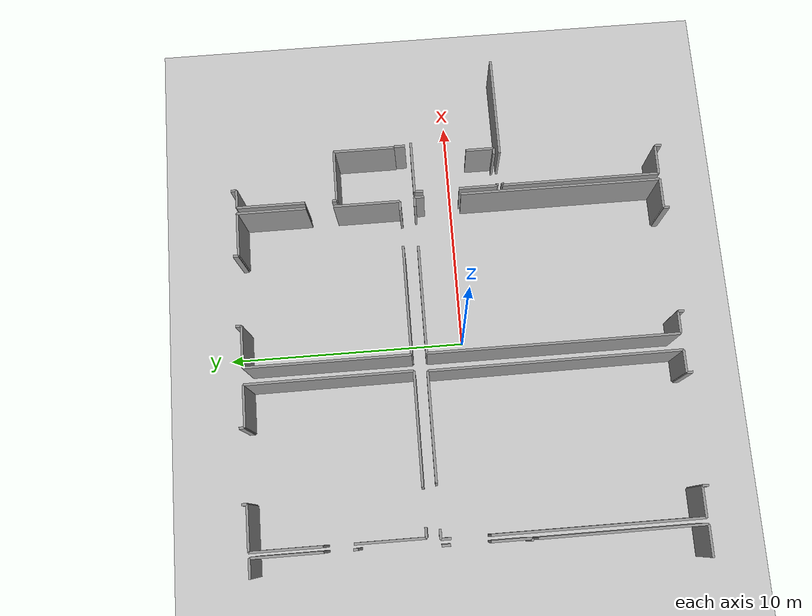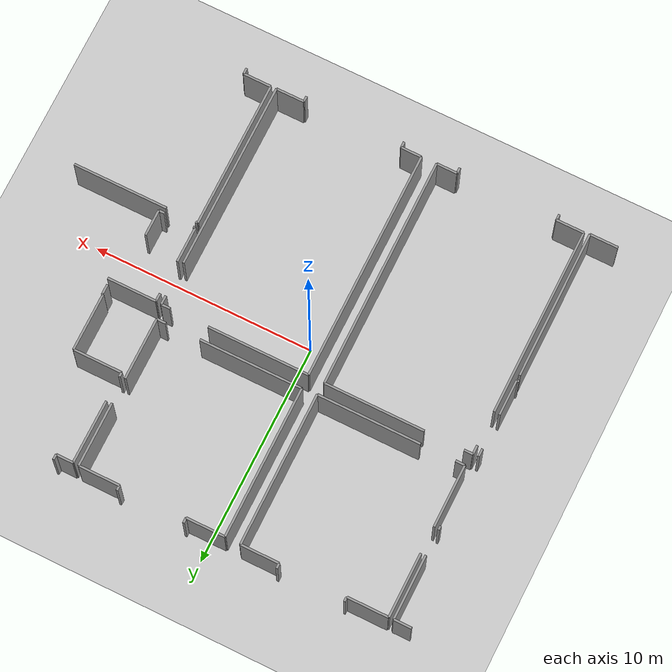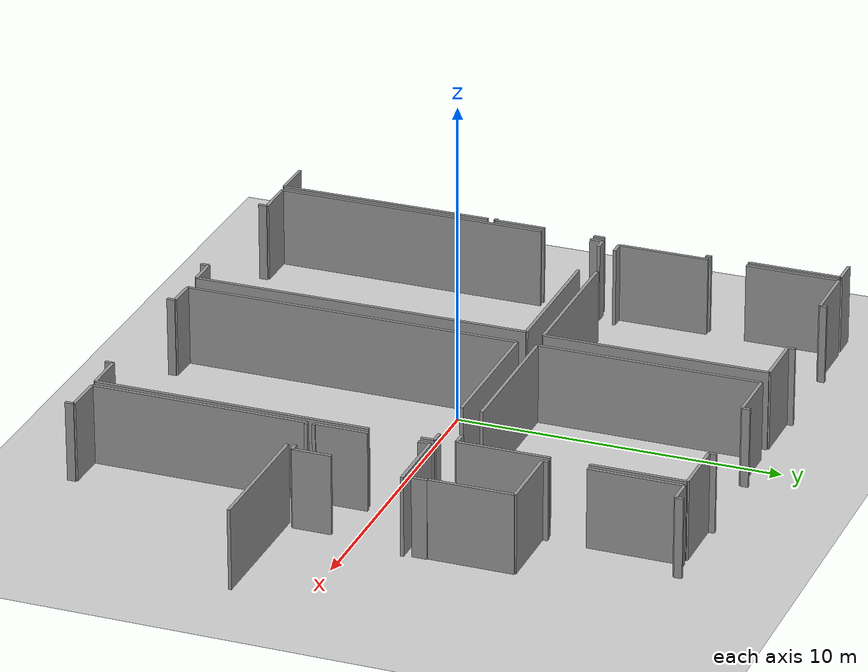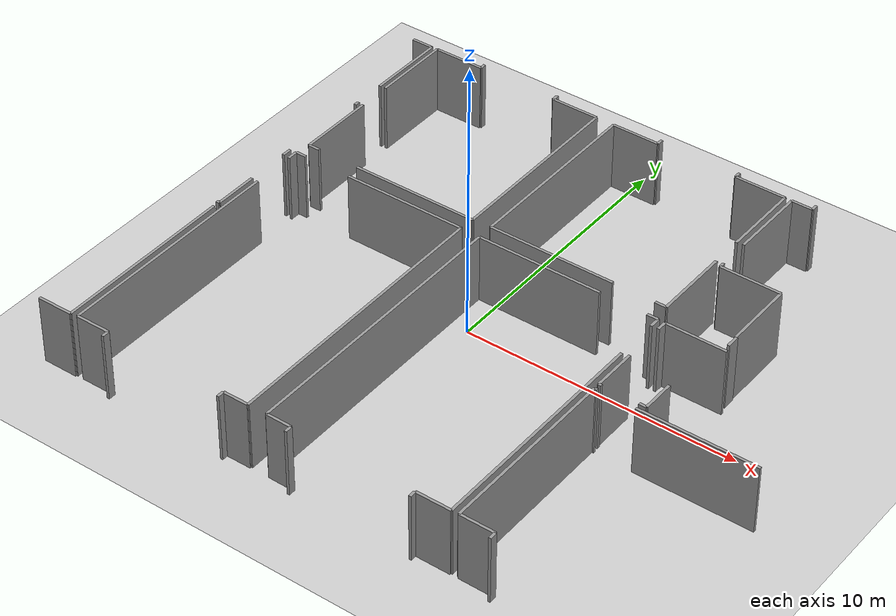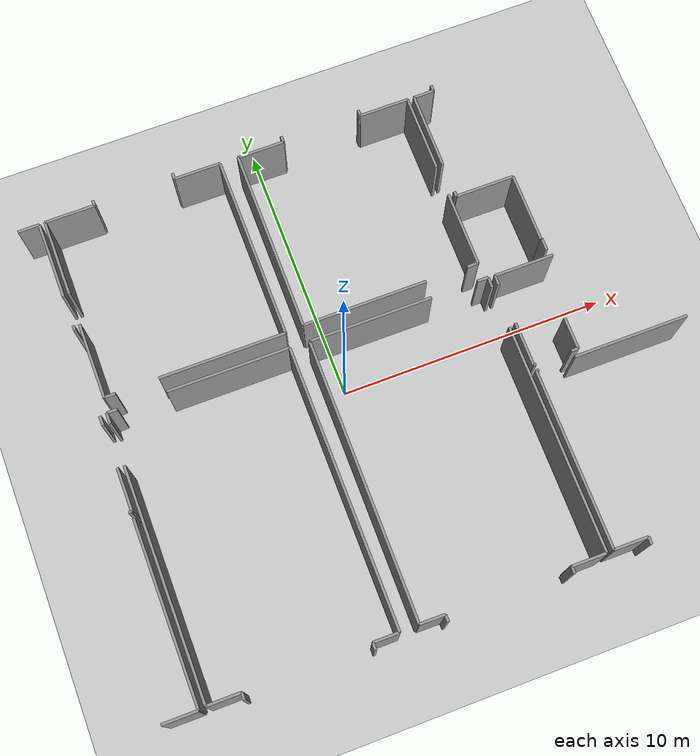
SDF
<sdf version="1.6">
 <world name="default">
  <model name="ground_plane">
   <static>1</static>
   <link name="link">
    <collision name="collision">
     <geometry><plane><normal>0 0 1</normal><size>100 100</size></plane></geometry>
     <surface><friction><ode><mu>100</mu><mu2>50</mu2></ode></friction></surface>
    </collision>
    <visual name="visual">
     <cast_shadows>0</cast_shadows>
     <geometry><plane><normal>0 0 1</normal><size>100 100</size></plane></geometry>
     <material>
      <script><uri>file://media/materials/scripts/gazebo.material</uri><name>Gazebo/Grey</name></script>
     </material>
    </visual>
   </link>
  </model>
  <model name="0510034841_A-40">
   <static>1</static>
   <link name="Wall_93">
    <collision name="Wall_93_Collision">
     <geometry><box><size>0.183558444196 0.1 2.5</size></box></geometry>
     <pose>0.0917792220981 0 1.25 0 0 0</pose>
    </collision>
    <visual name="Wall_93_Visual">
     <pose>0.0917792220981 0 1.25 0 0 0</pose>
     <geometry><box><size>0.183558444196 0.1 2.5</size></box></geometry>
     <material>
      <script><uri>file://media/materials/scripts/gazebo.material</uri><name>Gazebo/Grey</name></script>
      <ambient>1 1 1 1</ambient>
     </material>
    </visual>
    <pose>25.5278257337 -4.49007311872 0 0 0 1.57079632679</pose>
   </link>
   <link name="Wall_94">
    <collision name="Wall_94_Collision">
     <geometry><box><size>2.91053112623 0.1 2.5</size></box></geometry>
     <pose>1.45526556312 0 1.25 0 0 0</pose>
    </collision>
    <visual name="Wall_94_Visual">
     <pose>1.45526556312 0 1.25 0 0 0</pose>
     <geometry><box><size>2.91053112623 0.1 2.5</size></box></geometry>
     <material>
      <script><uri>file://media/materials/scripts/gazebo.material</uri><name>Gazebo/Grey</name></script>
      <ambient>1 1 1 1</ambient>
     </material>
    </visual>
    <pose>25.5278257337 -3.14626282116 0 0 0 1.57079632679</pose>
   </link>
   <link name="Wall_95">
    <collision name="Wall_95_Collision">
     <geometry><box><size>0.794658271555 0.1 2.5</size></box></geometry>
     <pose>0.397329135777 0 1.25 0 0 0</pose>
    </collision>
    <visual name="Wall_95_Visual">
     <pose>0.397329135777 0 1.25 0 0 0</pose>
     <geometry><box><size>0.794658271555 0.1 2.5</size></box></geometry>
     <material>
      <script><uri>file://media/materials/scripts/gazebo.material</uri><name>Gazebo/Grey</name></script>
      <ambient>1 1 1 1</ambient>
     </material>
    </visual>
    <pose>25.5278257337 -0.235731694932 0 0 0 3.14159265359</pose>
   </link>
   <link name="Wall_104">
    <collision name="Wall_104_Collision">
     <geometry><box><size>4.66512643445 0.1 2.5</size></box></geometry>
     <pose>2.33256321722 0 1.25 0 0 0</pose>
    </collision>
    <visual name="Wall_104_Visual">
     <pose>2.33256321722 0 1.25 0 0 0</pose>
     <geometry><box><size>4.66512643445 0.1 2.5</size></box></geometry>
     <material>
      <script><uri>file://media/materials/scripts/gazebo.material</uri><name>Gazebo/Grey</name></script>
      <ambient>1 1 1 1</ambient>
     </material>
    </visual>
    <pose>32.396542094 -7.18683355337 0 0 0 3.14159265359</pose>
   </link>
   <link name="Wall_105">
    <collision name="Wall_105_Collision">
     <geometry><box><size>0.41738600589 0.1 2.5</size></box></geometry>
     <pose>0.208693002945 0 1.25 0 0 0</pose>
    </collision>
    <visual name="Wall_105_Visual">
     <pose>0.208693002945 0 1.25 0 0 0</pose>
     <geometry><box><size>0.41738600589 0.1 2.5</size></box></geometry>
     <material>
      <script><uri>file://media/materials/scripts/gazebo.material</uri><name>Gazebo/Grey</name></script>
      <ambient>1 1 1 1</ambient>
     </material>
    </visual>
    <pose>26.1622829288 -7.18683355337 0 0 0 3.14159265359</pose>
   </link>
   <link name="Wall_106">
    <collision name="Wall_106_Collision">
     <geometry><box><size>2.84693307606 0.1 2.5</size></box></geometry>
     <pose>1.42346653803 0 1.25 0 0 0</pose>
    </collision>
    <visual name="Wall_106_Visual">
     <pose>1.42346653803 0 1.25 0 0 0</pose>
     <geometry><box><size>2.84693307606 0.1 2.5</size></box></geometry>
     <material>
      <script><uri>file://media/materials/scripts/gazebo.material</uri><name>Gazebo/Grey</name></script>
      <ambient>1 1 1 1</ambient>
     </material>
    </visual>
    <pose>25.7448969229 -7.18683355337 0 0 0 1.57079632679</pose>
   </link>
   <link name="Wall_107">
    <collision name="Wall_107_Collision">
     <geometry><box><size>2.91408550828 0.1 2.5</size></box></geometry>
     <pose>1.45704275414 0 1.25 0 0 0</pose>
    </collision>
    <visual name="Wall_107_Visual">
     <pose>1.45704275414 0 1.25 0 0 0</pose>
     <geometry><box><size>2.91408550828 0.1 2.5</size></box></geometry>
     <material>
      <script><uri>file://media/materials/scripts/gazebo.material</uri><name>Gazebo/Grey</name></script>
      <ambient>1 1 1 1</ambient>
     </material>
    </visual>
    <pose>25.7448969229 -3.13433025287 0 0 0 1.57079632679</pose>
   </link>
   <link name="Wall_108">
    <collision name="Wall_108_Collision">
     <geometry><box><size>1.86135371179 0.1 2.5</size></box></geometry>
     <pose>0.930676855895 0 1.25 0 0 0</pose>
    </collision>
    <visual name="Wall_108_Visual">
     <pose>0.930676855895 0 1.25 0 0 0</pose>
     <geometry><box><size>1.86135371179 0.1 2.5</size></box></geometry>
     <material>
      <script><uri>file://media/materials/scripts/gazebo.material</uri><name>Gazebo/Grey</name></script>
      <ambient>1 1 1 1</ambient>
     </material>
    </visual>
    <pose>25.7448969229 -0.220244744592 0 0 0 0.0</pose>
   </link>
   <link name="Wall_109">
    <collision name="Wall_109_Collision">
     <geometry><box><size>0.21008936732 0.1 2.5</size></box></geometry>
     <pose>0.10504468366 0 1.25 0 0 0</pose>
    </collision>
    <visual name="Wall_109_Visual">
     <pose>0.10504468366 0 1.25 0 0 0</pose>
     <geometry><box><size>0.21008936732 0.1 2.5</size></box></geometry>
     <material>
      <script><uri>file://media/materials/scripts/gazebo.material</uri><name>Gazebo/Grey</name></script>
      <ambient>1 1 1 1</ambient>
     </material>
    </visual>
    <pose>27.6062506347 -0.220244744592 0 0 0 1.57079632679</pose>
   </link>
   <link name="Wall_110">
    <collision name="Wall_110_Collision">
     <geometry><box><size>0.232177312887 0.1 2.5</size></box></geometry>
     <pose>0.116088656444 0 1.25 0 0 0</pose>
    </collision>
    <visual name="Wall_110_Visual">
     <pose>0.116088656444 0 1.25 0 0 0</pose>
     <geometry><box><size>0.232177312887 0.1 2.5</size></box></geometry>
     <material>
      <script><uri>file://media/materials/scripts/gazebo.material</uri><name>Gazebo/Grey</name></script>
      <ambient>1 1 1 1</ambient>
     </material>
    </visual>
    <pose>30.6328069463 -0.0101553772723 0 0 0 -1.57079632679</pose>
   </link>
   <link name="Wall_111">
    <collision name="Wall_111_Collision">
     <geometry><box><size>1.74190108663 0.1 2.5</size></box></geometry>
     <pose>0.870950543313 0 1.25 0 0 0</pose>
    </collision>
    <visual name="Wall_111_Visual">
     <pose>0.870950543313 0 1.25 0 0 0</pose>
     <geometry><box><size>1.74190108663 0.1 2.5</size></box></geometry>
     <material>
      <script><uri>file://media/materials/scripts/gazebo.material</uri><name>Gazebo/Grey</name></script>
      <ambient>1 1 1 1</ambient>
     </material>
    </visual>
    <pose>30.6328069463 -0.242332690159 0 0 0 0.0</pose>
   </link>
   <link name="Wall_112">
    <collision name="Wall_112_Collision">
     <geometry><box><size>6.94453518713 0.1 2.5</size></box></geometry>
     <pose>3.47226759357 0 1.25 0 0 0</pose>
    </collision>
    <visual name="Wall_112_Visual">
     <pose>3.47226759357 0 1.25 0 0 0</pose>
     <geometry><box><size>6.94453518713 0.1 2.5</size></box></geometry>
     <material>
      <script><uri>file://media/materials/scripts/gazebo.material</uri><name>Gazebo/Grey</name></script>
      <ambient>1 1 1 1</ambient>
     </material>
    </visual>
    <pose>32.3747080329 -0.242332690159 0 0 0 -1.56765225789</pose>
   </link>
   <link name="Wall_113">
    <collision name="Wall_113_Collision">
     <geometry><box><size>0.940641819844 0.1 2.5</size></box></geometry>
     <pose>0.470320909922 0 1.25 0 0 0</pose>
    </collision>
    <visual name="Wall_113_Visual">
     <pose>0.470320909922 0 1.25 0 0 0</pose>
     <geometry><box><size>0.940641819844 0.1 2.5</size></box></geometry>
     <material>
      <script><uri>file://media/materials/scripts/gazebo.material</uri><name>Gazebo/Grey</name></script>
      <ambient>1 1 1 1</ambient>
     </material>
    </visual>
    <pose>32.3904488677 -18.2412155987 0 0 0 3.14159265359</pose>
   </link>
   <link name="Wall_114">
    <collision name="Wall_114_Collision">
     <geometry><box><size>0.259216004875 0.1 2.5</size></box></geometry>
     <pose>0.129608002437 0 1.25 0 0 0</pose>
    </collision>
    <visual name="Wall_114_Visual">
     <pose>0.129608002437 0 1.25 0 0 0</pose>
     <geometry><box><size>0.259216004875 0.1 2.5</size></box></geometry>
     <material>
      <script><uri>file://media/materials/scripts/gazebo.material</uri><name>Gazebo/Grey</name></script>
      <ambient>1 1 1 1</ambient>
     </material>
    </visual>
    <pose>31.4498070478 -18.2412155987 0 0 0 -1.57079632679</pose>
   </link>
   <link name="Wall_115">
    <collision name="Wall_115_Collision">
     <geometry><box><size>0.265436173454 0.1 2.5</size></box></geometry>
     <pose>0.132718086727 0 1.25 0 0 0</pose>
    </collision>
    <visual name="Wall_115_Visual">
     <pose>0.132718086727 0 1.25 0 0 0</pose>
     <geometry><box><size>0.265436173454 0.1 2.5</size></box></geometry>
     <material>
      <script><uri>file://media/materials/scripts/gazebo.material</uri><name>Gazebo/Grey</name></script>
      <ambient>1 1 1 1</ambient>
     </material>
    </visual>
    <pose>26.8957550523 -18.5004316035 0 0 0 1.57079632679</pose>
   </link>
   <link name="Wall_116">
    <collision name="Wall_116_Collision">
     <geometry><box><size>1.2420026404 0.1 2.5</size></box></geometry>
     <pose>0.621001320199 0 1.25 0 0 0</pose>
    </collision>
    <visual name="Wall_116_Visual">
     <pose>0.621001320199 0 1.25 0 0 0</pose>
     <geometry><box><size>1.2420026404 0.1 2.5</size></box></geometry>
     <material>
      <script><uri>file://media/materials/scripts/gazebo.material</uri><name>Gazebo/Grey</name></script>
      <ambient>1 1 1 1</ambient>
     </material>
    </visual>
    <pose>26.8957550523 -18.2349954301 0 0 0 3.14159265359</pose>
   </link>
   <link name="Wall_117">
    <collision name="Wall_117_Collision">
     <geometry><box><size>8.51071392302 0.1 2.5</size></box></geometry>
     <pose>4.25535696151 0 1.25 0 0 0</pose>
    </collision>
    <visual name="Wall_117_Visual">
     <pose>4.25535696151 0 1.25 0 0 0</pose>
     <geometry><box><size>8.51071392302 0.1 2.5</size></box></geometry>
     <material>
      <script><uri>file://media/materials/scripts/gazebo.material</uri><name>Gazebo/Grey</name></script>
      <ambient>1 1 1 1</ambient>
     </material>
    </visual>
    <pose>25.6537524119 -18.2349954301 0 0 0 1.57079632679</pose>
   </link>
   <link name="Wall_118">
    <collision name="Wall_118_Collision">
     <geometry><box><size>0.406215090891 0.1 2.5</size></box></geometry>
     <pose>0.203107545445 0 1.25 0 0 0</pose>
    </collision>
    <visual name="Wall_118_Visual">
     <pose>0.203107545445 0 1.25 0 0 0</pose>
     <geometry><box><size>0.406215090891 0.1 2.5</size></box></geometry>
     <material>
      <script><uri>file://media/materials/scripts/gazebo.material</uri><name>Gazebo/Grey</name></script>
      <ambient>1 1 1 1</ambient>
     </material>
    </visual>
    <pose>25.6537524119 -8.14969026099 0 0 0 1.57079632679</pose>
   </link>
   <link name="Wall_119">
    <collision name="Wall_119_Collision">
     <geometry><box><size>0.393140042653 0.1 2.5</size></box></geometry>
     <pose>0.196570021326 0 1.25 0 0 0</pose>
    </collision>
    <visual name="Wall_119_Visual">
     <pose>0.196570021326 0 1.25 0 0 0</pose>
     <geometry><box><size>0.393140042653 0.1 2.5</size></box></geometry>
     <material>
      <script><uri>file://media/materials/scripts/gazebo.material</uri><name>Gazebo/Grey</name></script>
      <ambient>1 1 1 1</ambient>
     </material>
    </visual>
    <pose>25.6537524119 -7.7434751701 0 0 0 0.0</pose>
   </link>
   <link name="Wall_120">
    <collision name="Wall_120_Collision">
     <geometry><box><size>4.51774652178 0.1 2.5</size></box></geometry>
     <pose>2.25887326089 0 1.25 0 0 0</pose>
    </collision>
    <visual name="Wall_120_Visual">
     <pose>2.25887326089 0 1.25 0 0 0</pose>
     <geometry><box><size>4.51774652178 0.1 2.5</size></box></geometry>
     <material>
      <script><uri>file://media/materials/scripts/gazebo.material</uri><name>Gazebo/Grey</name></script>
      <ambient>1 1 1 1</ambient>
     </material>
    </visual>
    <pose>27.8328424901 -7.7434751701 0 0 0 0.0</pose>
   </link>
   <link name="Wall_121">
    <collision name="Wall_121_Collision">
     <geometry><box><size>10.4978161021 0.1 2.5</size></box></geometry>
     <pose>5.24890805105 0 1.25 0 0 0</pose>
    </collision>
    <visual name="Wall_121_Visual">
     <pose>5.24890805105 0 1.25 0 0 0</pose>
     <geometry><box><size>10.4978161021 0.1 2.5</size></box></geometry>
     <material>
      <script><uri>file://media/materials/scripts/gazebo.material</uri><name>Gazebo/Grey</name></script>
      <ambient>1 1 1 1</ambient>
     </material>
    </visual>
    <pose>32.3505890119 -7.7434751701 0 0 0 -1.5669993512</pose>
   </link>
   <link name="Wall_122">
    <collision name="Wall_122_Collision">
     <geometry><box><size>1.28097390068 0.1 2.5</size></box></geometry>
     <pose>0.64048695034 0 1.25 0 0 0</pose>
    </collision>
    <visual name="Wall_122_Visual">
     <pose>0.64048695034 0 1.25 0 0 0</pose>
     <geometry><box><size>1.28097390068 0.1 2.5</size></box></geometry>
     <material>
      <script><uri>file://media/materials/scripts/gazebo.material</uri><name>Gazebo/Grey</name></script>
      <ambient>1 1 1 1</ambient>
     </material>
    </visual>
    <pose>25.4002488067 -18.2809485122 0 0 0 3.14159265359</pose>
   </link>
   <link name="Wall_129">
    <collision name="Wall_129_Collision">
     <geometry><box><size>6.72046132299 0.1 2.5</size></box></geometry>
     <pose>3.3602306615 0 1.25 0 0 0</pose>
    </collision>
    <visual name="Wall_129_Visual">
     <pose>3.3602306615 0 1.25 0 0 0</pose>
     <geometry><box><size>6.72046132299 0.1 2.5</size></box></geometry>
     <material>
      <script><uri>file://media/materials/scripts/gazebo.material</uri><name>Gazebo/Grey</name></script>
      <ambient>1 1 1 1</ambient>
     </material>
    </visual>
    <pose>25.3867929319 -11.5605006601 0 0 0 -1.56879410057</pose>
   </link>
   <link name="Wall_130">
    <collision name="Wall_130_Collision">
     <geometry><box><size>0.116025185336 0.1 2.5</size></box></geometry>
     <pose>0.0580125926678 0 1.25 0 0 0</pose>
    </collision>
    <visual name="Wall_130_Visual">
     <pose>0.0580125926678 0 1.25 0 0 0</pose>
     <geometry><box><size>0.116025185336 0.1 2.5</size></box></geometry>
     <material>
      <script><uri>file://media/materials/scripts/gazebo.material</uri><name>Gazebo/Grey</name></script>
      <ambient>1 1 1 1</ambient>
     </material>
    </visual>
    <pose>25.4069767442 -11.3180410277 0 0 0 3.14159265359</pose>
   </link>
   <link name="Wall_149">
    <collision name="Wall_149_Collision">
     <geometry><box><size>0.352264649132 0.1 2.5</size></box></geometry>
     <pose>0.176132324566 0 1.25 0 0 0</pose>
    </collision>
    <visual name="Wall_149_Visual">
     <pose>0.176132324566 0 1.25 0 0 0</pose>
     <geometry><box><size>0.352264649132 0.1 2.5</size></box></geometry>
     <material>
      <script><uri>file://media/materials/scripts/gazebo.material</uri><name>Gazebo/Grey</name></script>
      <ambient>1 1 1 1</ambient>
     </material>
    </visual>
    <pose>25.4069767442 -7.76505534681 0 0 0 -1.57079632679</pose>
   </link>
   <link name="Wall_150">
    <collision name="Wall_150_Collision">
     <geometry><box><size>1.61127754646 0.1 2.5</size></box></geometry>
     <pose>0.80563877323 0 1.25 0 0 0</pose>
    </collision>
    <visual name="Wall_150_Visual">
     <pose>0.80563877323 0 1.25 0 0 0</pose>
     <geometry><box><size>1.61127754646 0.1 2.5</size></box></geometry>
     <material>
      <script><uri>file://media/materials/scripts/gazebo.material</uri><name>Gazebo/Grey</name></script>
      <ambient>1 1 1 1</ambient>
     </material>
    </visual>
    <pose>25.4069767442 -9.70676348126 0 0 0 -1.57079632679</pose>
   </link>
   <link name="Wall_151">
    <collision name="Wall_151_Collision">
     <geometry><box><size>6.88433025287 0.1 2.5</size></box></geometry>
     <pose>3.44216512643 0 1.25 0 0 0</pose>
    </collision>
    <visual name="Wall_151_Visual">
     <pose>3.44216512643 0 1.25 0 0 0</pose>
     <geometry><box><size>6.88433025287 0.1 2.5</size></box></geometry>
     <material>
      <script><uri>file://media/materials/scripts/gazebo.material</uri><name>Gazebo/Grey</name></script>
      <ambient>1 1 1 1</ambient>
     </material>
    </visual>
    <pose>33.0718746826 -7.13313699604 0 0 0 1.57079632679</pose>
   </link>
   <link name="Wall_152">
    <collision name="Wall_152_Collision">
     <geometry><box><size>1.75066009952 0.1 2.5</size></box></geometry>
     <pose>0.875330049761 0 1.25 0 0 0</pose>
    </collision>
    <visual name="Wall_152_Visual">
     <pose>0.875330049761 0 1.25 0 0 0</pose>
     <geometry><box><size>1.75066009952 0.1 2.5</size></box></geometry>
     <material>
      <script><uri>file://media/materials/scripts/gazebo.material</uri><name>Gazebo/Grey</name></script>
      <ambient>1 1 1 1</ambient>
     </material>
    </visual>
    <pose>33.0718746826 -0.248806743171 0 0 0 0.0</pose>
   </link>
   <link name="Wall_153">
    <collision name="Wall_153_Collision">
     <geometry><box><size>0.238143597035 0.1 2.5</size></box></geometry>
     <pose>0.119071798517 0 1.25 0 0 0</pose>
    </collision>
    <visual name="Wall_153_Visual">
     <pose>0.119071798517 0 1.25 0 0 0</pose>
     <geometry><box><size>0.238143597035 0.1 2.5</size></box></geometry>
     <material>
      <script><uri>file://media/materials/scripts/gazebo.material</uri><name>Gazebo/Grey</name></script>
      <ambient>1 1 1 1</ambient>
     </material>
    </visual>
    <pose>34.8225347822 -0.248806743171 0 0 0 1.57079632679</pose>
   </link>
   <link name="Wall_154">
    <collision name="Wall_154_Collision">
     <geometry><box><size>0.23052706408 0.1 2.5</size></box></geometry>
     <pose>0.11526353204 0 1.25 0 0 0</pose>
    </collision>
    <visual name="Wall_154_Visual">
     <pose>0.11526353204 0 1.25 0 0 0</pose>
     <geometry><box><size>0.23052706408 0.1 2.5</size></box></geometry>
     <material>
      <script><uri>file://media/materials/scripts/gazebo.material</uri><name>Gazebo/Grey</name></script>
      <ambient>1 1 1 1</ambient>
     </material>
    </visual>
    <pose>37.8289072814 -0.0106631461359 0 0 0 -1.57079632679</pose>
   </link>
   <link name="Wall_155">
    <collision name="Wall_155_Collision">
     <geometry><box><size>1.85856098304 0.1 2.5</size></box></geometry>
     <pose>0.92928049152 0 1.25 0 0 0</pose>
    </collision>
    <visual name="Wall_155_Visual">
     <pose>0.92928049152 0 1.25 0 0 0</pose>
     <geometry><box><size>1.85856098304 0.1 2.5</size></box></geometry>
     <material>
      <script><uri>file://media/materials/scripts/gazebo.material</uri><name>Gazebo/Grey</name></script>
      <ambient>1 1 1 1</ambient>
     </material>
    </visual>
    <pose>37.8289072814 -0.241190210216 0 0 0 0.0</pose>
   </link>
   <link name="Wall_156">
    <collision name="Wall_156_Collision">
     <geometry><box><size>2.91522798822 0.1 2.5</size></box></geometry>
     <pose>1.45761399411 0 1.25 0 0 0</pose>
    </collision>
    <visual name="Wall_156_Visual">
     <pose>1.45761399411 0 1.25 0 0 0</pose>
     <geometry><box><size>2.91522798822 0.1 2.5</size></box></geometry>
     <material>
      <script><uri>file://media/materials/scripts/gazebo.material</uri><name>Gazebo/Grey</name></script>
      <ambient>1 1 1 1</ambient>
     </material>
    </visual>
    <pose>39.6874682644 -0.241190210216 0 0 0 -1.57079632679</pose>
   </link>
   <link name="Wall_157">
    <collision name="Wall_157_Collision">
     <geometry><box><size>2.8184980197 0.1 2.5</size></box></geometry>
     <pose>1.40924900985 0 1.25 0 0 0</pose>
    </collision>
    <visual name="Wall_157_Visual">
     <pose>1.40924900985 0 1.25 0 0 0</pose>
     <geometry><box><size>2.8184980197 0.1 2.5</size></box></geometry>
     <material>
      <script><uri>file://media/materials/scripts/gazebo.material</uri><name>Gazebo/Grey</name></script>
      <ambient>1 1 1 1</ambient>
     </material>
    </visual>
    <pose>39.6874682644 -4.30803798111 0 0 0 -1.57079632679</pose>
   </link>
   <link name="Wall_158">
    <collision name="Wall_158_Collision">
     <geometry><box><size>0.408500050777 0.1 2.5</size></box></geometry>
     <pose>0.204250025388 0 1.25 0 0 0</pose>
    </collision>
    <visual name="Wall_158_Visual">
     <pose>0.204250025388 0 1.25 0 0 0</pose>
     <geometry><box><size>0.408500050777 0.1 2.5</size></box></geometry>
     <material>
      <script><uri>file://media/materials/scripts/gazebo.material</uri><name>Gazebo/Grey</name></script>
      <ambient>1 1 1 1</ambient>
     </material>
    </visual>
    <pose>39.6874682644 -7.12653600081 0 0 0 3.14159265359</pose>
   </link>
   <link name="Wall_159">
    <collision name="Wall_159_Collision">
     <geometry><box><size>4.64342400745 0.1 2.5</size></box></geometry>
     <pose>2.32171200372 0 1.25 0 0 0</pose>
    </collision>
    <visual name="Wall_159_Visual">
     <pose>2.32171200372 0 1.25 0 0 0</pose>
     <geometry><box><size>4.64342400745 0.1 2.5</size></box></geometry>
     <material>
      <script><uri>file://media/materials/scripts/gazebo.material</uri><name>Gazebo/Grey</name></script>
      <ambient>1 1 1 1</ambient>
     </material>
    </visual>
    <pose>37.7152939982 -7.12653600081 0 0 0 -3.14017107386</pose>
   </link>
   <link name="Wall_160">
    <collision name="Wall_160_Collision">
     <geometry><box><size>0.768762059511 0.1 2.5</size></box></geometry>
     <pose>0.384381029755 0 1.25 0 0 0</pose>
    </collision>
    <visual name="Wall_160_Visual">
     <pose>0.384381029755 0 1.25 0 0 0</pose>
     <geometry><box><size>0.768762059511 0.1 2.5</size></box></geometry>
     <material>
      <script><uri>file://media/materials/scripts/gazebo.material</uri><name>Gazebo/Grey</name></script>
      <ambient>1 1 1 1</ambient>
     </material>
    </visual>
    <pose>39.9447801361 -0.244617650046 0 0 0 0.0</pose>
   </link>
   <link name="Wall_161">
    <collision name="Wall_161_Collision">
     <geometry><box><size>0.238524423682 0.1 2.5</size></box></geometry>
     <pose>0.119262211841 0 1.25 0 0 0</pose>
    </collision>
    <visual name="Wall_161_Visual">
     <pose>0.119262211841 0 1.25 0 0 0</pose>
     <geometry><box><size>0.238524423682 0.1 2.5</size></box></geometry>
     <material>
      <script><uri>file://media/materials/scripts/gazebo.material</uri><name>Gazebo/Grey</name></script>
      <ambient>1 1 1 1</ambient>
     </material>
    </visual>
    <pose>40.7135421956 -0.244617650046 0 0 0 1.57079632679</pose>
   </link>
   <link name="Wall_171">
    <collision name="Wall_171_Collision">
     <geometry><box><size>0.462704376968 0.1 2.5</size></box></geometry>
     <pose>0.231352188484 0 1.25 0 0 0</pose>
    </collision>
    <visual name="Wall_171_Visual">
     <pose>0.231352188484 0 1.25 0 0 0</pose>
     <geometry><box><size>0.462704376968 0.1 2.5</size></box></geometry>
     <material>
      <script><uri>file://media/materials/scripts/gazebo.material</uri><name>Gazebo/Grey</name></script>
      <ambient>1 1 1 1</ambient>
     </material>
    </visual>
    <pose>42.1726160252 -7.52513455875 0 0 0 1.57079632679</pose>
   </link>
   <link name="Wall_172">
    <collision name="Wall_172_Collision">
     <geometry><box><size>0.0350360515893 0.1 2.5</size></box></geometry>
     <pose>0.0175180257947 0 1.25 0 0 0</pose>
    </collision>
    <visual name="Wall_172_Visual">
     <pose>0.0175180257947 0 1.25 0 0 0</pose>
     <geometry><box><size>0.0350360515893 0.1 2.5</size></box></geometry>
     <material>
      <script><uri>file://media/materials/scripts/gazebo.material</uri><name>Gazebo/Grey</name></script>
      <ambient>1 1 1 1</ambient>
     </material>
    </visual>
    <pose>42.1726160252 -7.06243018178 0 0 0 3.14159265359</pose>
   </link>
   <link name="Wall_173">
    <collision name="Wall_173_Collision">
     <geometry><box><size>2.59533360414 0.1 2.5</size></box></geometry>
     <pose>1.29766680207 0 1.25 0 0 0</pose>
    </collision>
    <visual name="Wall_173_Visual">
     <pose>1.29766680207 0 1.25 0 0 0</pose>
     <geometry><box><size>2.59533360414 0.1 2.5</size></box></geometry>
     <material>
      <script><uri>file://media/materials/scripts/gazebo.material</uri><name>Gazebo/Grey</name></script>
      <ambient>1 1 1 1</ambient>
     </material>
    </visual>
    <pose>42.1375799736 -7.06243018178 0 0 0 1.57079632679</pose>
   </link>
   <link name="Wall_174">
    <collision name="Wall_174_Collision">
     <geometry><box><size>2.2054940591 0.1 2.5</size></box></geometry>
     <pose>1.10274702955 0 1.25 0 0 0</pose>
    </collision>
    <visual name="Wall_174_Visual">
     <pose>1.10274702955 0 1.25 0 0 0</pose>
     <geometry><box><size>2.2054940591 0.1 2.5</size></box></geometry>
     <material>
      <script><uri>file://media/materials/scripts/gazebo.material</uri><name>Gazebo/Grey</name></script>
      <ambient>1 1 1 1</ambient>
     </material>
    </visual>
    <pose>42.1375799736 -4.46709657764 0 0 0 3.14159265359</pose>
   </link>
   <link name="Wall_175">
    <collision name="Wall_175_Collision">
     <geometry><box><size>0.194856301412 0.1 2.5</size></box></geometry>
     <pose>0.0974281507058 0 1.25 0 0 0</pose>
    </collision>
    <visual name="Wall_175_Visual">
     <pose>0.0974281507058 0 1.25 0 0 0</pose>
     <geometry><box><size>0.194856301412 0.1 2.5</size></box></geometry>
     <material>
      <script><uri>file://media/materials/scripts/gazebo.material</uri><name>Gazebo/Grey</name></script>
      <ambient>1 1 1 1</ambient>
     </material>
    </visual>
    <pose>39.9320859145 -4.46709657764 0 0 0 1.57079632679</pose>
   </link>
   <link name="Wall_176">
    <collision name="Wall_176_Collision">
     <geometry><box><size>2.87501533068 0.1 2.5</size></box></geometry>
     <pose>1.43750766534 0 1.25 0 0 0</pose>
    </collision>
    <visual name="Wall_176_Visual">
     <pose>1.43750766534 0 1.25 0 0 0</pose>
     <geometry><box><size>2.87501533068 0.1 2.5</size></box></geometry>
     <material>
      <script><uri>file://media/materials/scripts/gazebo.material</uri><name>Gazebo/Grey</name></script>
      <ambient>1 1 1 1</ambient>
     </material>
    </visual>
    <pose>39.9320859145 -3.11960495582 0 0 0 1.56638095457</pose>
   </link>
   <link name="Wall_177">
    <collision name="Wall_177_Collision">
     <geometry><box><size>10.4610541282 0.1 2.5</size></box></geometry>
     <pose>5.23052706408 0 1.25 0 0 0</pose>
    </collision>
    <visual name="Wall_177_Visual">
     <pose>5.23052706408 0 1.25 0 0 0</pose>
     <geometry><box><size>10.4610541282 0.1 2.5</size></box></geometry>
     <material>
      <script><uri>file://media/materials/scripts/gazebo.material</uri><name>Gazebo/Grey</name></script>
      <ambient>1 1 1 1</ambient>
     </material>
    </visual>
    <pose>33.0831725399 -18.2226820351 0 0 0 1.57079632679</pose>
   </link>
   <link name="Wall_178">
    <collision name="Wall_178_Collision">
     <geometry><box><size>4.57982126536 0.1 2.5</size></box></geometry>
     <pose>2.28991063268 0 1.25 0 0 0</pose>
    </collision>
    <visual name="Wall_178_Visual">
     <pose>2.28991063268 0 1.25 0 0 0</pose>
     <geometry><box><size>4.57982126536 0.1 2.5</size></box></geometry>
     <material>
      <script><uri>file://media/materials/scripts/gazebo.material</uri><name>Gazebo/Grey</name></script>
      <ambient>1 1 1 1</ambient>
     </material>
    </visual>
    <pose>33.0831725399 -7.76162790698 0 0 0 0.0</pose>
   </link>
   <link name="Wall_179">
    <collision name="Wall_179_Collision">
     <geometry><box><size>0.406088148675 0.1 2.5</size></box></geometry>
     <pose>0.203044074337 0 1.25 0 0 0</pose>
    </collision>
    <visual name="Wall_179_Visual">
     <pose>0.203044074337 0 1.25 0 0 0</pose>
     <geometry><box><size>0.406088148675 0.1 2.5</size></box></geometry>
     <material>
      <script><uri>file://media/materials/scripts/gazebo.material</uri><name>Gazebo/Grey</name></script>
      <ambient>1 1 1 1</ambient>
     </material>
    </visual>
    <pose>39.4081953895 -7.76162790698 0 0 0 0.0</pose>
   </link>
   <link name="Wall_180">
    <collision name="Wall_180_Collision">
     <geometry><box><size>0.4046917843 0.1 2.5</size></box></geometry>
     <pose>0.20234589215 0 1.25 0 0 0</pose>
    </collision>
    <visual name="Wall_180_Visual">
     <pose>0.20234589215 0 1.25 0 0 0</pose>
     <geometry><box><size>0.4046917843 0.1 2.5</size></box></geometry>
     <material>
      <script><uri>file://media/materials/scripts/gazebo.material</uri><name>Gazebo/Grey</name></script>
      <ambient>1 1 1 1</ambient>
     </material>
    </visual>
    <pose>39.8142835381 -7.76162790698 0 0 0 -1.57079632679</pose>
   </link>
   <link name="Wall_181">
    <collision name="Wall_181_Collision">
     <geometry><box><size>8.4929420128 0.1 2.5</size></box></geometry>
     <pose>4.2464710064 0 1.25 0 0 0</pose>
    </collision>
    <visual name="Wall_181_Visual">
     <pose>4.2464710064 0 1.25 0 0 0</pose>
     <geometry><box><size>8.4929420128 0.1 2.5</size></box></geometry>
     <material>
      <script><uri>file://media/materials/scripts/gazebo.material</uri><name>Gazebo/Grey</name></script>
      <ambient>1 1 1 1</ambient>
     </material>
    </visual>
    <pose>39.8142835381 -9.74344978166 0 0 0 -1.57079632679</pose>
   </link>
   <link name="Wall_182">
    <collision name="Wall_182_Collision">
     <geometry><box><size>1.27830811415 0.1 2.5</size></box></geometry>
     <pose>0.639154057073 0 1.25 0 0 0</pose>
    </collision>
    <visual name="Wall_182_Visual">
     <pose>0.639154057073 0 1.25 0 0 0</pose>
     <geometry><box><size>1.27830811415 0.1 2.5</size></box></geometry>
     <material>
      <script><uri>file://media/materials/scripts/gazebo.material</uri><name>Gazebo/Grey</name></script>
      <ambient>1 1 1 1</ambient>
     </material>
    </visual>
    <pose>39.8142835381 -18.2363917945 0 0 0 3.14159265359</pose>
   </link>
   <link name="Wall_183">
    <collision name="Wall_183_Collision">
     <geometry><box><size>0.253122778511 0.1 2.5</size></box></geometry>
     <pose>0.126561389256 0 1.25 0 0 0</pose>
    </collision>
    <visual name="Wall_183_Visual">
     <pose>0.126561389256 0 1.25 0 0 0</pose>
     <geometry><box><size>0.253122778511 0.1 2.5</size></box></geometry>
     <material>
      <script><uri>file://media/materials/scripts/gazebo.material</uri><name>Gazebo/Grey</name></script>
      <ambient>1 1 1 1</ambient>
     </material>
    </visual>
    <pose>38.535975424 -18.2363917945 0 0 0 -1.57079632679</pose>
   </link>
   <link name="Wall_184">
    <collision name="Wall_184_Collision">
     <geometry><box><size>0.255788565045 0.1 2.5</size></box></geometry>
     <pose>0.127894282523 0 1.25 0 0 0</pose>
    </collision>
    <visual name="Wall_184_Visual">
     <pose>0.127894282523 0 1.25 0 0 0</pose>
     <geometry><box><size>0.255788565045 0.1 2.5</size></box></geometry>
     <material>
      <script><uri>file://media/materials/scripts/gazebo.material</uri><name>Gazebo/Grey</name></script>
      <ambient>1 1 1 1</ambient>
     </material>
    </visual>
    <pose>34.0115009648 -18.489514573 0 0 0 1.57079632679</pose>
   </link>
   <link name="Wall_185">
    <collision name="Wall_185_Collision">
     <geometry><box><size>0.928394115564 0.1 2.5</size></box></geometry>
     <pose>0.464197057782 0 1.25 0 0 0</pose>
    </collision>
    <visual name="Wall_185_Visual">
     <pose>0.464197057782 0 1.25 0 0 0</pose>
     <geometry><box><size>0.928394115564 0.1 2.5</size></box></geometry>
     <material>
      <script><uri>file://media/materials/scripts/gazebo.material</uri><name>Gazebo/Grey</name></script>
      <ambient>1 1 1 1</ambient>
     </material>
    </visual>
    <pose>34.0115009648 -18.2337260079 0 0 0 3.12969659233</pose>
   </link>
   <link name="Wall_186">
    <collision name="Wall_186_Collision">
     <geometry><box><size>6.67677972987 0.1 2.5</size></box></geometry>
     <pose>3.33838986493 0 1.25 0 0 0</pose>
    </collision>
    <visual name="Wall_186_Visual">
     <pose>3.33838986493 0 1.25 0 0 0</pose>
     <geometry><box><size>6.67677972987 0.1 2.5</size></box></geometry>
     <material>
      <script><uri>file://media/materials/scripts/gazebo.material</uri><name>Gazebo/Grey</name></script>
      <ambient>1 1 1 1</ambient>
     </material>
    </visual>
    <pose>40.0703259876 -18.2211587285 0 0 0 1.57079632679</pose>
   </link>
   <link name="Wall_187">
    <collision name="Wall_187_Collision">
     <geometry><box><size>0.102696252666 0.1 2.5</size></box></geometry>
     <pose>0.0513481263329 0 1.25 0 0 0</pose>
    </collision>
    <visual name="Wall_187_Visual">
     <pose>0.0513481263329 0 1.25 0 0 0</pose>
     <geometry><box><size>0.102696252666 0.1 2.5</size></box></geometry>
     <material>
      <script><uri>file://media/materials/scripts/gazebo.material</uri><name>Gazebo/Grey</name></script>
      <ambient>1 1 1 1</ambient>
     </material>
    </visual>
    <pose>40.0703259876 -11.5443789987 0 0 0 0.0</pose>
   </link>
   <link name="Wall_188">
    <collision name="Wall_188_Collision">
     <geometry><box><size>4.28061846248 0.1 2.5</size></box></geometry>
     <pose>2.14030923124 0 1.25 0 0 0</pose>
    </collision>
    <visual name="Wall_188_Visual">
     <pose>2.14030923124 0 1.25 0 0 0</pose>
     <geometry><box><size>4.28061846248 0.1 2.5</size></box></geometry>
     <material>
      <script><uri>file://media/materials/scripts/gazebo.material</uri><name>Gazebo/Grey</name></script>
      <ambient>1 1 1 1</ambient>
     </material>
    </visual>
    <pose>41.5287651061 -11.5443789987 0 0 0 0.0</pose>
   </link>
   <link name="Wall_192">
    <collision name="Wall_192_Collision">
     <geometry><box><size>0.265690057886 0.1 2.5</size></box></geometry>
     <pose>0.132845028943 0 1.25 0 0 0</pose>
    </collision>
    <visual name="Wall_192_Visual">
     <pose>0.132845028943 0 1.25 0 0 0</pose>
     <geometry><box><size>0.265690057886 0.1 2.5</size></box></geometry>
     <material>
      <script><uri>file://media/materials/scripts/gazebo.material</uri><name>Gazebo/Grey</name></script>
      <ambient>1 1 1 1</ambient>
     </material>
    </visual>
    <pose>41.3327663248 -18.4931958972 0 0 0 1.57079632679</pose>
   </link>
   <link name="Wall_193">
    <collision name="Wall_193_Collision">
     <geometry><box><size>1.26245629259 0.1 2.5</size></box></geometry>
     <pose>0.631228146295 0 1.25 0 0 0</pose>
    </collision>
    <visual name="Wall_193_Visual">
     <pose>0.631228146295 0 1.25 0 0 0</pose>
     <geometry><box><size>1.26245629259 0.1 2.5</size></box></geometry>
     <material>
      <script><uri>file://media/materials/scripts/gazebo.material</uri><name>Gazebo/Grey</name></script>
      <ambient>1 1 1 1</ambient>
     </material>
    </visual>
    <pose>41.3327663248 -18.2275058393 0 0 0 3.13656504386</pose>
   </link>
   <link name="Wall_199">
    <collision name="Wall_199_Collision">
     <geometry><box><size>2.22021935615 0.1 2.5</size></box></geometry>
     <pose>1.11010967807 0 1.25 0 0 0</pose>
    </collision>
    <visual name="Wall_199_Visual">
     <pose>1.11010967807 0 1.25 0 0 0</pose>
     <geometry><box><size>2.22021935615 0.1 2.5</size></box></geometry>
     <material>
      <script><uri>file://media/materials/scripts/gazebo.material</uri><name>Gazebo/Grey</name></script>
      <ambient>1 1 1 1</ambient>
     </material>
    </visual>
    <pose>40.0722301208 -7.78206560374 0 0 0 0.0</pose>
   </link>
   <link name="Wall_215">
    <collision name="Wall_215_Collision">
     <geometry><box><size>1.19465319387 0.1 2.5</size></box></geometry>
     <pose>0.597326596933 0 1.25 0 0 0</pose>
    </collision>
    <visual name="Wall_215_Visual">
     <pose>0.597326596933 0 1.25 0 0 0</pose>
     <geometry><box><size>1.19465319387 0.1 2.5</size></box></geometry>
     <material>
      <script><uri>file://media/materials/scripts/gazebo.material</uri><name>Gazebo/Grey</name></script>
      <ambient>1 1 1 1</ambient>
     </material>
    </visual>
    <pose>41.7571341525 -10.1157713009 0 0 0 -1.57079632679</pose>
   </link>
   <link name="Wall_216">
    <collision name="Wall_216_Collision">
     <geometry><box><size>0.261500964761 0.1 2.5</size></box></geometry>
     <pose>0.13075048238 0 1.25 0 0 0</pose>
    </collision>
    <visual name="Wall_216_Visual">
     <pose>0.13075048238 0 1.25 0 0 0</pose>
     <geometry><box><size>0.261500964761 0.1 2.5</size></box></geometry>
     <material>
      <script><uri>file://media/materials/scripts/gazebo.material</uri><name>Gazebo/Grey</name></script>
      <ambient>1 1 1 1</ambient>
     </material>
    </visual>
    <pose>41.7571341525 -11.3104244948 0 0 0 3.14159265359</pose>
   </link>
   <link name="Wall_217">
    <collision name="Wall_217_Collision">
     <geometry><box><size>0.0938102975526 0.1 2.5</size></box></geometry>
     <pose>0.0469051487763 0 1.25 0 0 0</pose>
    </collision>
    <visual name="Wall_217_Visual">
     <pose>0.0469051487763 0 1.25 0 0 0</pose>
     <geometry><box><size>0.0938102975526 0.1 2.5</size></box></geometry>
     <material>
      <script><uri>file://media/materials/scripts/gazebo.material</uri><name>Gazebo/Grey</name></script>
      <ambient>1 1 1 1</ambient>
     </material>
    </visual>
    <pose>40.1594394232 -11.3104244948 0 0 0 3.14159265359</pose>
   </link>
   <link name="Wall_218">
    <collision name="Wall_218_Collision">
     <geometry><box><size>1.62904945669 0.1 2.5</size></box></geometry>
     <pose>0.814524728344 0 1.25 0 0 0</pose>
    </collision>
    <visual name="Wall_218_Visual">
     <pose>0.814524728344 0 1.25 0 0 0</pose>
     <geometry><box><size>1.62904945669 0.1 2.5</size></box></geometry>
     <material>
      <script><uri>file://media/materials/scripts/gazebo.material</uri><name>Gazebo/Grey</name></script>
      <ambient>1 1 1 1</ambient>
     </material>
    </visual>
    <pose>40.0656291256 -11.3104244948 0 0 0 1.57079632679</pose>
   </link>
   <link name="Wall_219">
    <collision name="Wall_219_Collision">
     <geometry><box><size>0.366668541955 0.1 2.5</size></box></geometry>
     <pose>0.183334270978 0 1.25 0 0 0</pose>
    </collision>
    <visual name="Wall_219_Visual">
     <pose>0.183334270978 0 1.25 0 0 0</pose>
     <geometry><box><size>0.366668541955 0.1 2.5</size></box></geometry>
     <material>
      <script><uri>file://media/materials/scripts/gazebo.material</uri><name>Gazebo/Grey</name></script>
      <ambient>1 1 1 1</ambient>
     </material>
    </visual>
    <pose>40.0656291256 -8.14867472327 0 0 0 1.55279273205</pose>
   </link>
   <pose>-33.8 9.33765613893 0 0 0 0</pose>
  </model>
 </world>
</sdf>
